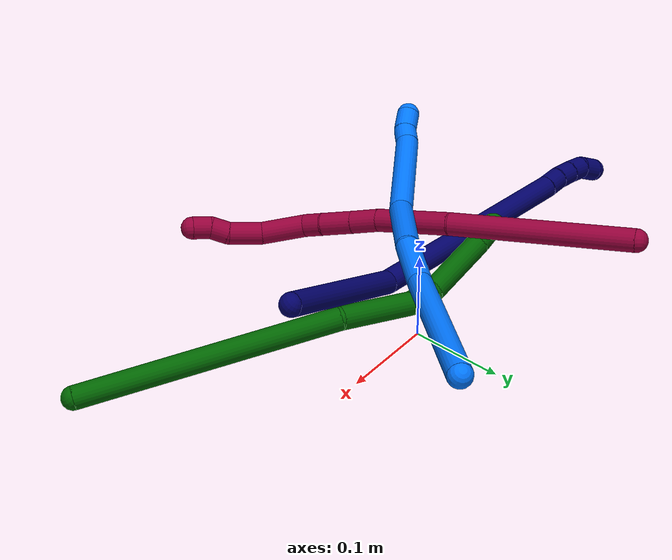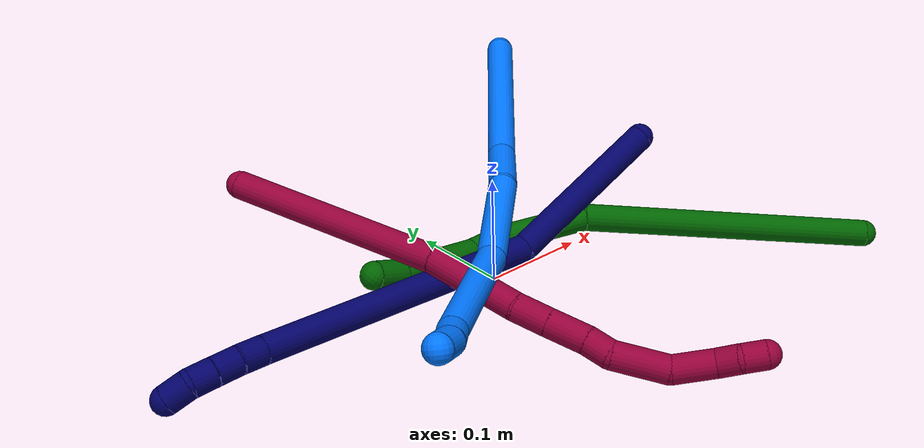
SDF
<sdf version="1.7">
 <world name="default">
  <model name="photoneo_s_sensor">
   <static>1</static>
   <pose>0 0 2 1.57079 1.57079 3.14159</pose>
   <link name="link">
    <inertial><mass>0.1</mass></inertial>
    <sensor name="sensor" type="depth">
     <update_rate>30</update_rate>
     <camera>
      <horizontal_fov>1.22</horizontal_fov>
      <image><width>1920</width><height>1200</height><format>B8G8R8</format></image>
      <clip><near>0.1</near><far>4</far></clip>
      <depth_camera><output>points</output></depth_camera>
     </camera>
     <plugin name="camera_plugin" filename="libgazebo_ros_depth_camera.so">
      <baseline>0.2</baseline>
      <alwaysOn>1</alwaysOn>
      <updateRate>0.0</updateRate>
      <cameraName>camera_ir</cameraName>
      <imageTopicName>/camera/color/image_raw</imageTopicName>
      <cameraInfoTopicName>/camera/color/camera_info</cameraInfoTopicName>
      <depthImageTopicName>/camera/depth/image_raw</depthImageTopicName>
      <depthImageCameraInfoTopicName>/camera/depth/camera_info</depthImageCameraInfoTopicName>
      <pointCloudTopicName>/camera/depth/points</pointCloudTopicName>
      <frameName>fr_optical</frameName>
      <pointCloudCutoff>0.1</pointCloudCutoff>
      <pointCloudCutoffMax>2.0</pointCloudCutoffMax>
      <distortionK1>0</distortionK1>
      <distortionK2>0</distortionK2>
      <distortionK3>0</distortionK3>
      <distortionT1>0</distortionT1>
      <distortionT2>0</distortionT2>
      <CxPrime>0</CxPrime>
      <Cx>0</Cx>
      <Cy>0</Cy>
      <focalLength>0</focalLength>
      <hackBaseline>0</hackBaseline>
     </plugin>
    </sensor>
   </link>
  </model>
  <model name="bin">
   <static>1</static>
   <link name="bottom">
    <collision name="collision-bottom">
     <pose>0 0 -0.01 0 -0 0</pose>
     <geometry><box><size>0.8 0.6 0.02</size></box></geometry>
     <surface>
      <friction><ode><mu>100</mu><mu2>100</mu2></ode></friction>
      <contact><collide_bitmask>65535</collide_bitmask></contact>
     </surface>
    </collision>
   </link>
   <link name="west_wall">
    <collision name="collision-west_wall">
     <pose>-0.41 0 0.1 0 -0 0</pose>
     <geometry><box><size>0.02 0.6 0.2</size></box></geometry>
     <surface>
      <friction><ode><mu>100</mu><mu2>100</mu2></ode></friction>
      <contact><collide_bitmask>65535</collide_bitmask></contact>
     </surface>
    </collision>
   </link>
   <link name="east_wall">
    <collision name="collision-east_wall">
     <pose>0.41 0 0.1 0 -0 0</pose>
     <geometry><box><size>0.02 0.6 0.2</size></box></geometry>
     <surface>
      <friction><ode><mu>100</mu><mu2>100</mu2></ode></friction>
      <contact><collide_bitmask>65535</collide_bitmask></contact>
     </surface>
    </collision>
   </link>
   <link name="south_wall">
    <collision name="collision-south_wall">
     <pose>0 -0.31 0.1 0 -0 0</pose>
     <geometry><box><size>0.8 0.02 0.2</size></box></geometry>
     <surface>
      <friction><ode><mu>100</mu><mu2>100</mu2></ode></friction>
      <contact><collide_bitmask>65535</collide_bitmask></contact>
     </surface>
    </collision>
   </link>
   <link name="north_wall">
    <collision name="collision-north_wall">
     <pose>0 0.31 0.1 0 -0 0</pose>
     <geometry><box><size>0.8 0.02 0.2</size></box></geometry>
     <surface>
      <friction><ode><mu>100</mu><mu2>100</mu2></ode></friction>
      <contact><collide_bitmask>65535</collide_bitmask></contact>
     </surface>
    </collision>
   </link>
  </model>
  <model name="6">
   <static>0</static>
   <link name="6">
    <collision name="collision-cylinder-e_1_1_4">
     <pose>0.01175 -0.00789 -0.0045 2.08916 0.912702 1.40336</pose>
     <geometry><cylinder><radius>0.0125</radius><length>0.029703</length></cylinder></geometry>
     <surface>
      <friction><ode><mu>1.16</mu><mu2>1.16</mu2><slip1>0</slip1><slip2>0</slip2></ode></friction>
      <contact><ode><kp>1e+06</kp><kd>1</kd><max_vel>0</max_vel><min_depth>0.001</min_depth></ode></contact>
     </surface>
    </collision>
    <visual name="visual-cylinder-e_1_1_4">
     <pose>0.01175 -0.00789 -0.0045 2.08916 0.912702 1.40336</pose>
     <geometry><cylinder><radius>0.0125</radius><length>0.029703</length></cylinder></geometry>
     <material><ambient>0 0.392157 0.003922 1</ambient></material>
    </visual>
    <collision name="collision-cylinder-e_2_4_5">
     <pose>0.052448 -0.038461 -0.027341 2.25079 0.781619 1.42401</pose>
     <geometry><cylinder><radius>0.0125</radius><length>0.08219</length></cylinder></geometry>
     <surface>
      <friction><ode><mu>1.16</mu><mu2>1.16</mu2><slip1>0</slip1><slip2>0</slip2></ode></friction>
      <contact><ode><kp>1e+06</kp><kd>1</kd><max_vel>0</max_vel><min_depth>0.001</min_depth></ode></contact>
     </surface>
    </collision>
    <visual name="visual-cylinder-e_2_4_5">
     <pose>0.052448 -0.038461 -0.027341 2.25079 0.781619 1.42401</pose>
     <geometry><cylinder><radius>0.0125</radius><length>0.08219</length></cylinder></geometry>
     <material><ambient>0 0.392157 0.003922 1</ambient></material>
    </visual>
    <collision name="collision-cylinder-e_3_5_6">
     <pose>0.092022 -0.068506 -0.057 2.56468 0.66665 1.7245</pose>
     <geometry><cylinder><radius>0.0125</radius><length>0.034363</length></cylinder></geometry>
     <surface>
      <friction><ode><mu>1.16</mu><mu2>1.16</mu2><slip1>0</slip1><slip2>0</slip2></ode></friction>
      <contact><ode><kp>1e+06</kp><kd>1</kd><max_vel>0</max_vel><min_depth>0.001</min_depth></ode></contact>
     </surface>
    </collision>
    <visual name="visual-cylinder-e_3_5_6">
     <pose>0.092022 -0.068506 -0.057 2.56468 0.66665 1.7245</pose>
     <geometry><cylinder><radius>0.0125</radius><length>0.034363</length></cylinder></geometry>
     <material><ambient>0 0.392157 0.003922 1</ambient></material>
    </visual>
    <collision name="collision-cylinder-e_4_6_7">
     <pose>0.130062 -0.079656 -0.096282 3.00706 0.770964 2.81255</pose>
     <geometry><cylinder><radius>0.0125</radius><length>0.07869</length></cylinder></geometry>
     <surface>
      <friction><ode><mu>1.16</mu><mu2>1.16</mu2><slip1>0</slip1><slip2>0</slip2></ode></friction>
      <contact><ode><kp>1e+06</kp><kd>1</kd><max_vel>0</max_vel><min_depth>0.001</min_depth></ode></contact>
     </surface>
    </collision>
    <visual name="visual-cylinder-e_4_6_7">
     <pose>0.130062 -0.079656 -0.096282 3.00706 0.770964 2.81255</pose>
     <geometry><cylinder><radius>0.0125</radius><length>0.07869</length></cylinder></geometry>
     <material><ambient>0 0.392157 0.003922 1</ambient></material>
    </visual>
    <collision name="collision-cylinder-e_5_7_2">
     <pose>0.27634 -0.077373 -0.193158 -3.05376 1.04371 -2.98905</pose>
     <geometry><cylinder><radius>0.0125</radius><length>0.275054</length></cylinder></geometry>
     <surface>
      <friction><ode><mu>1.16</mu><mu2>1.16</mu2><slip1>0</slip1><slip2>0</slip2></ode></friction>
      <contact><ode><kp>1e+06</kp><kd>1</kd><max_vel>0</max_vel><min_depth>0.001</min_depth></ode></contact>
     </surface>
    </collision>
    <visual name="visual-cylinder-e_5_7_2">
     <pose>0.27634 -0.077373 -0.193158 -3.05376 1.04371 -2.98905</pose>
     <geometry><cylinder><radius>0.0125</radius><length>0.275054</length></cylinder></geometry>
     <material><ambient>0 0.392157 0.003922 1</ambient></material>
    </visual>
    <collision name="collision-sphere-2">
     <pose>0.395202 -0.071305 -0.262069 0 -0 0</pose>
     <geometry><sphere><radius>0.0125</radius></sphere></geometry>
     <surface>
      <friction><ode><mu>1.16</mu><mu2>1.16</mu2><slip1>0</slip1><slip2>0</slip2></ode></friction>
      <contact><ode><kp>1e+06</kp><kd>1</kd><max_vel>0</max_vel><min_depth>0.001</min_depth></ode></contact>
     </surface>
    </collision>
    <visual name="visual-sphere-2">
     <pose>0.395202 -0.071305 -0.262069 0 -0 0</pose>
     <geometry><sphere><radius>0.0125</radius></sphere></geometry>
     <material><ambient>0 0.392157 0.003922 1</ambient></material>
    </visual>
    <collision name="collision-sphere-7">
     <pose>0.157479 -0.083442 -0.124247 0 -0 0</pose>
     <geometry><sphere><radius>0.0125</radius></sphere></geometry>
     <surface>
      <friction><ode><mu>1.16</mu><mu2>1.16</mu2><slip1>0</slip1><slip2>0</slip2></ode></friction>
      <contact><ode><kp>1e+06</kp><kd>1</kd><max_vel>0</max_vel><min_depth>0.001</min_depth></ode></contact>
     </surface>
    </collision>
    <visual name="visual-sphere-7">
     <pose>0.157479 -0.083442 -0.124247 0 -0 0</pose>
     <geometry><sphere><radius>0.0125</radius></sphere></geometry>
     <material><ambient>0 0.392157 0.003922 1</ambient></material>
    </visual>
    <collision name="collision-sphere-6">
     <pose>0.102646 -0.075871 -0.068317 0 -0 0</pose>
     <geometry><sphere><radius>0.0125</radius></sphere></geometry>
     <surface>
      <friction><ode><mu>1.16</mu><mu2>1.16</mu2><slip1>0</slip1><slip2>0</slip2></ode></friction>
      <contact><ode><kp>1e+06</kp><kd>1</kd><max_vel>0</max_vel><min_depth>0.001</min_depth></ode></contact>
     </surface>
    </collision>
    <visual name="visual-sphere-6">
     <pose>0.102646 -0.075871 -0.068317 0 -0 0</pose>
     <geometry><sphere><radius>0.0125</radius></sphere></geometry>
     <material><ambient>0 0.392157 0.003922 1</ambient></material>
    </visual>
    <collision name="collision-sphere-5">
     <pose>0.081397 -0.061141 -0.045682 0 -0 0</pose>
     <geometry><sphere><radius>0.0125</radius></sphere></geometry>
     <surface>
      <friction><ode><mu>1.16</mu><mu2>1.16</mu2><slip1>0</slip1><slip2>0</slip2></ode></friction>
      <contact><ode><kp>1e+06</kp><kd>1</kd><max_vel>0</max_vel><min_depth>0.001</min_depth></ode></contact>
     </surface>
    </collision>
    <visual name="visual-sphere-5">
     <pose>0.081397 -0.061141 -0.045682 0 -0 0</pose>
     <geometry><sphere><radius>0.0125</radius></sphere></geometry>
     <material><ambient>0 0.392157 0.003922 1</ambient></material>
    </visual>
    <collision name="collision-sphere-1">
     <geometry><sphere><radius>0.0125</radius></sphere></geometry>
     <surface>
      <friction><ode><mu>1.16</mu><mu2>1.16</mu2><slip1>0</slip1><slip2>0</slip2></ode></friction>
      <contact><ode><kp>1e+06</kp><kd>1</kd><max_vel>0</max_vel><min_depth>0.001</min_depth></ode></contact>
     </surface>
    </collision>
    <visual name="visual-sphere-1">
     <geometry><sphere><radius>0.0125</radius></sphere></geometry>
     <material><ambient>0 0.392157 0.003922 1</ambient></material>
    </visual>
    <collision name="collision-sphere-4">
     <pose>0.0235 -0.01578 -0.009001 0 -0 0</pose>
     <geometry><sphere><radius>0.0125</radius></sphere></geometry>
     <surface>
      <friction><ode><mu>1.16</mu><mu2>1.16</mu2><slip1>0</slip1><slip2>0</slip2></ode></friction>
      <contact><ode><kp>1e+06</kp><kd>1</kd><max_vel>0</max_vel><min_depth>0.001</min_depth></ode></contact>
     </surface>
    </collision>
    <visual name="visual-sphere-4">
     <pose>0.0235 -0.01578 -0.009001 0 -0 0</pose>
     <geometry><sphere><radius>0.0125</radius></sphere></geometry>
     <material><ambient>0 0.392157 0.003922 1</ambient></material>
    </visual>
    <inertial>
     <pose>0.18813 -0.066599 -0.130089 0 -0 0</pose>
     <mass>0.5</mass>
     <inertia>
      <ixx>-0.000944</ixx>
      <ixy>0</ixy>
      <ixz>0</ixz>
      <iyy>0.001718</iyy>
      <iyz>0</iyz>
      <izz>-0.001641</izz>
     </inertia>
    </inertial>
   </link>
   <pose>-0.13715 -0.005034 0.060524 3.01008 0.669886 -0.629005</pose>
  </model>
  <model name="7">
   <static>0</static>
   <link name="7">
    <collision name="collision-cylinder-e_1_1_4">
     <pose>-0.078591 -0.0114 0.005506 1.12085 -1.41108 -0.981791</pose>
     <geometry><cylinder><radius>0.0125</radius><length>0.159207</length></cylinder></geometry>
     <surface>
      <friction><ode><mu>1.16</mu><mu2>1.16</mu2><slip1>0</slip1><slip2>0</slip2></ode></friction>
      <contact><ode><kp>1e+06</kp><kd>1</kd><max_vel>0</max_vel><min_depth>0.001</min_depth></ode></contact>
     </surface>
    </collision>
    <visual name="visual-cylinder-e_1_1_4">
     <pose>-0.078591 -0.0114 0.005506 1.12085 -1.41108 -0.981791</pose>
     <geometry><cylinder><radius>0.0125</radius><length>0.159207</length></cylinder></geometry>
     <material><ambient>0.003922 0 0.403922 1</ambient></material>
    </visual>
    <collision name="collision-cylinder-e_2_4_5">
     <pose>-0.278902 -0.027008 -0.028124 3.03449 -1.25803 -2.99452</pose>
     <geometry><cylinder><radius>0.0125</radius><length>0.255855</length></cylinder></geometry>
     <surface>
      <friction><ode><mu>1.16</mu><mu2>1.16</mu2><slip1>0</slip1><slip2>0</slip2></ode></friction>
      <contact><ode><kp>1e+06</kp><kd>1</kd><max_vel>0</max_vel><min_depth>0.001</min_depth></ode></contact>
     </surface>
    </collision>
    <visual name="visual-cylinder-e_2_4_5">
     <pose>-0.278902 -0.027008 -0.028124 3.03449 -1.25803 -2.99452</pose>
     <geometry><cylinder><radius>0.0125</radius><length>0.255855</length></cylinder></geometry>
     <material><ambient>0.003922 0 0.403922 1</ambient></material>
    </visual>
    <collision name="collision-cylinder-e_3_5_6">
     <pose>-0.41095 -0.030598 -0.070426 -2.94881 -1.26813 2.88011</pose>
     <geometry><cylinder><radius>0.0125</radius><length>0.021636</length></cylinder></geometry>
     <surface>
      <friction><ode><mu>1.16</mu><mu2>1.16</mu2><slip1>0</slip1><slip2>0</slip2></ode></friction>
      <contact><ode><kp>1e+06</kp><kd>1</kd><max_vel>0</max_vel><min_depth>0.001</min_depth></ode></contact>
     </surface>
    </collision>
    <visual name="visual-cylinder-e_3_5_6">
     <pose>-0.41095 -0.030598 -0.070426 -2.94881 -1.26813 2.88011</pose>
     <geometry><cylinder><radius>0.0125</radius><length>0.021636</length></cylinder></geometry>
     <material><ambient>0.003922 0 0.403922 1</ambient></material>
    </visual>
    <collision name="collision-cylinder-e_4_6_7">
     <pose>-0.431666 -0.03061 -0.07614 2.89904 -1.32324 -2.83109</pose>
     <geometry><cylinder><radius>0.0125</radius><length>0.021433</length></cylinder></geometry>
     <surface>
      <friction><ode><mu>1.16</mu><mu2>1.16</mu2><slip1>0</slip1><slip2>0</slip2></ode></friction>
      <contact><ode><kp>1e+06</kp><kd>1</kd><max_vel>0</max_vel><min_depth>0.001</min_depth></ode></contact>
     </surface>
    </collision>
    <visual name="visual-cylinder-e_4_6_7">
     <pose>-0.431666 -0.03061 -0.07614 2.89904 -1.32324 -2.83109</pose>
     <geometry><cylinder><radius>0.0125</radius><length>0.021433</length></cylinder></geometry>
     <material><ambient>0.003922 0 0.403922 1</ambient></material>
    </visual>
    <collision name="collision-cylinder-e_5_7_8">
     <pose>-0.451925 -0.032467 -0.080971 2.64857 -1.31411 -2.51095</pose>
     <geometry><cylinder><radius>0.0125</radius><length>0.020408</length></cylinder></geometry>
     <surface>
      <friction><ode><mu>1.16</mu><mu2>1.16</mu2><slip1>0</slip1><slip2>0</slip2></ode></friction>
      <contact><ode><kp>1e+06</kp><kd>1</kd><max_vel>0</max_vel><min_depth>0.001</min_depth></ode></contact>
     </surface>
    </collision>
    <visual name="visual-cylinder-e_5_7_8">
     <pose>-0.451925 -0.032467 -0.080971 2.64857 -1.31411 -2.51095</pose>
     <geometry><cylinder><radius>0.0125</radius><length>0.020408</length></cylinder></geometry>
     <material><ambient>0.003922 0 0.403922 1</ambient></material>
    </visual>
    <collision name="collision-cylinder-e_6_8_2">
     <pose>-0.471471 -0.038332 -0.083302 1.58144 -1.12378 -1.1334</pose>
     <geometry><cylinder><radius>0.0125</radius><length>0.021461</length></cylinder></geometry>
     <surface>
      <friction><ode><mu>1.16</mu><mu2>1.16</mu2><slip1>0</slip1><slip2>0</slip2></ode></friction>
      <contact><ode><kp>1e+06</kp><kd>1</kd><max_vel>0</max_vel><min_depth>0.001</min_depth></ode></contact>
     </surface>
    </collision>
    <visual name="visual-cylinder-e_6_8_2">
     <pose>-0.471471 -0.038332 -0.083302 1.58144 -1.12378 -1.1334</pose>
     <geometry><cylinder><radius>0.0125</radius><length>0.021461</length></cylinder></geometry>
     <material><ambient>0.003922 0 0.403922 1</ambient></material>
    </visual>
    <collision name="collision-sphere-2">
     <pose>-0.481147 -0.04297 -0.083352 0 -0 0</pose>
     <geometry><sphere><radius>0.0125</radius></sphere></geometry>
     <surface>
      <friction><ode><mu>1.16</mu><mu2>1.16</mu2><slip1>0</slip1><slip2>0</slip2></ode></friction>
      <contact><ode><kp>1e+06</kp><kd>1</kd><max_vel>0</max_vel><min_depth>0.001</min_depth></ode></contact>
     </surface>
    </collision>
    <visual name="visual-sphere-2">
     <pose>-0.481147 -0.04297 -0.083352 0 -0 0</pose>
     <geometry><sphere><radius>0.0125</radius></sphere></geometry>
     <material><ambient>0.003922 0 0.403922 1</ambient></material>
    </visual>
    <collision name="collision-sphere-4">
     <pose>-0.157181 -0.0228 0.011012 0 -0 0</pose>
     <geometry><sphere><radius>0.0125</radius></sphere></geometry>
     <surface>
      <friction><ode><mu>1.16</mu><mu2>1.16</mu2><slip1>0</slip1><slip2>0</slip2></ode></friction>
      <contact><ode><kp>1e+06</kp><kd>1</kd><max_vel>0</max_vel><min_depth>0.001</min_depth></ode></contact>
     </surface>
    </collision>
    <visual name="visual-sphere-4">
     <pose>-0.157181 -0.0228 0.011012 0 -0 0</pose>
     <geometry><sphere><radius>0.0125</radius></sphere></geometry>
     <material><ambient>0.003922 0 0.403922 1</ambient></material>
    </visual>
    <collision name="collision-sphere-1">
     <geometry><sphere><radius>0.0125</radius></sphere></geometry>
     <surface>
      <friction><ode><mu>1.16</mu><mu2>1.16</mu2><slip1>0</slip1><slip2>0</slip2></ode></friction>
      <contact><ode><kp>1e+06</kp><kd>1</kd><max_vel>0</max_vel><min_depth>0.001</min_depth></ode></contact>
     </surface>
    </collision>
    <visual name="visual-sphere-1">
     <geometry><sphere><radius>0.0125</radius></sphere></geometry>
     <material><ambient>0.003922 0 0.403922 1</ambient></material>
    </visual>
    <collision name="collision-sphere-8">
     <pose>-0.461795 -0.033693 -0.083253 0 -0 0</pose>
     <geometry><sphere><radius>0.0125</radius></sphere></geometry>
     <surface>
      <friction><ode><mu>1.16</mu><mu2>1.16</mu2><slip1>0</slip1><slip2>0</slip2></ode></friction>
      <contact><ode><kp>1e+06</kp><kd>1</kd><max_vel>0</max_vel><min_depth>0.001</min_depth></ode></contact>
     </surface>
    </collision>
    <visual name="visual-sphere-8">
     <pose>-0.461795 -0.033693 -0.083253 0 -0 0</pose>
     <geometry><sphere><radius>0.0125</radius></sphere></geometry>
     <material><ambient>0.003922 0 0.403922 1</ambient></material>
    </visual>
    <collision name="collision-sphere-5">
     <pose>-0.400624 -0.031215 -0.067261 0 -0 0</pose>
     <geometry><sphere><radius>0.0125</radius></sphere></geometry>
     <surface>
      <friction><ode><mu>1.16</mu><mu2>1.16</mu2><slip1>0</slip1><slip2>0</slip2></ode></friction>
      <contact><ode><kp>1e+06</kp><kd>1</kd><max_vel>0</max_vel><min_depth>0.001</min_depth></ode></contact>
     </surface>
    </collision>
    <visual name="visual-sphere-5">
     <pose>-0.400624 -0.031215 -0.067261 0 -0 0</pose>
     <geometry><sphere><radius>0.0125</radius></sphere></geometry>
     <material><ambient>0.003922 0 0.403922 1</ambient></material>
    </visual>
    <collision name="collision-sphere-6">
     <pose>-0.421276 -0.02998 -0.073591 0 -0 0</pose>
     <geometry><sphere><radius>0.0125</radius></sphere></geometry>
     <surface>
      <friction><ode><mu>1.16</mu><mu2>1.16</mu2><slip1>0</slip1><slip2>0</slip2></ode></friction>
      <contact><ode><kp>1e+06</kp><kd>1</kd><max_vel>0</max_vel><min_depth>0.001</min_depth></ode></contact>
     </surface>
    </collision>
    <visual name="visual-sphere-6">
     <pose>-0.421276 -0.02998 -0.073591 0 -0 0</pose>
     <geometry><sphere><radius>0.0125</radius></sphere></geometry>
     <material><ambient>0.003922 0 0.403922 1</ambient></material>
    </visual>
    <collision name="collision-sphere-7">
     <pose>-0.442056 -0.031241 -0.078689 0 -0 0</pose>
     <geometry><sphere><radius>0.0125</radius></sphere></geometry>
     <surface>
      <friction><ode><mu>1.16</mu><mu2>1.16</mu2><slip1>0</slip1><slip2>0</slip2></ode></friction>
      <contact><ode><kp>1e+06</kp><kd>1</kd><max_vel>0</max_vel><min_depth>0.001</min_depth></ode></contact>
     </surface>
    </collision>
    <visual name="visual-sphere-7">
     <pose>-0.442056 -0.031241 -0.078689 0 -0 0</pose>
     <geometry><sphere><radius>0.0125</radius></sphere></geometry>
     <material><ambient>0.003922 0 0.403922 1</ambient></material>
    </visual>
    <inertial>
     <pose>-0.24271 -0.023057 -0.02583 0 -0 0</pose>
     <mass>0.5</mass>
     <inertia>
      <ixx>-0.000546</ixx>
      <ixy>0</ixy>
      <ixz>0</ixz>
      <iyy>0.001633</iyy>
      <iyz>0</iyz>
      <izz>0.001772</izz>
     </inertia>
    </inertial>
   </link>
   <pose>0.146545 -0.04158 0.111064 2.58152 -0.270473 0.084732</pose>
  </model>
  <model name="8">
   <static>0</static>
   <link name="8">
    <collision name="collision-cylinder-e_1_1_4">
     <pose>0.015844 -0.095139 -0.024239 1.82027 0.159996 0.205584</pose>
     <geometry><cylinder><radius>0.0125</radius><length>0.198898</length></cylinder></geometry>
     <surface>
      <friction><ode><mu>1.16</mu><mu2>1.16</mu2><slip1>0</slip1><slip2>0</slip2></ode></friction>
      <contact><ode><kp>1e+06</kp><kd>1</kd><max_vel>0</max_vel><min_depth>0.001</min_depth></ode></contact>
     </surface>
    </collision>
    <visual name="visual-cylinder-e_1_1_4">
     <pose>0.015844 -0.095139 -0.024239 1.82027 0.159996 0.205584</pose>
     <geometry><cylinder><radius>0.0125</radius><length>0.198898</length></cylinder></geometry>
     <material><ambient>0.584314 0 0.227451 1</ambient></material>
    </visual>
    <collision name="collision-cylinder-e_2_4_5">
     <pose>0.044167 -0.229045 -0.059427 1.84604 0.300443 0.394847</pose>
     <geometry><cylinder><radius>0.0125</radius><length>0.084342</length></cylinder></geometry>
     <surface>
      <friction><ode><mu>1.16</mu><mu2>1.16</mu2><slip1>0</slip1><slip2>0</slip2></ode></friction>
      <contact><ode><kp>1e+06</kp><kd>1</kd><max_vel>0</max_vel><min_depth>0.001</min_depth></ode></contact>
     </surface>
    </collision>
    <visual name="visual-cylinder-e_2_4_5">
     <pose>0.044167 -0.229045 -0.059427 1.84604 0.300443 0.394847</pose>
     <geometry><cylinder><radius>0.0125</radius><length>0.084342</length></cylinder></geometry>
     <material><ambient>0.584314 0 0.227451 1</ambient></material>
    </visual>
    <collision name="collision-cylinder-e_3_5_6">
     <pose>0.0603 -0.282483 -0.071994 1.68069 0.242524 0.270429</pose>
     <geometry><cylinder><radius>0.0125</radius><length>0.030414</length></cylinder></geometry>
     <surface>
      <friction><ode><mu>1.16</mu><mu2>1.16</mu2><slip1>0</slip1><slip2>0</slip2></ode></friction>
      <contact><ode><kp>1e+06</kp><kd>1</kd><max_vel>0</max_vel><min_depth>0.001</min_depth></ode></contact>
     </surface>
    </collision>
    <visual name="visual-cylinder-e_3_5_6">
     <pose>0.0603 -0.282483 -0.071994 1.68069 0.242524 0.270429</pose>
     <geometry><cylinder><radius>0.0125</radius><length>0.030414</length></cylinder></geometry>
     <material><ambient>0.584314 0 0.227451 1</ambient></material>
    </visual>
    <collision name="collision-cylinder-e_4_6_7">
     <pose>0.067916 -0.314157 -0.07561 1.68777 0.227589 0.255609</pose>
     <geometry><cylinder><radius>0.0125</radius><length>0.035142</length></cylinder></geometry>
     <surface>
      <friction><ode><mu>1.16</mu><mu2>1.16</mu2><slip1>0</slip1><slip2>0</slip2></ode></friction>
      <contact><ode><kp>1e+06</kp><kd>1</kd><max_vel>0</max_vel><min_depth>0.001</min_depth></ode></contact>
     </surface>
    </collision>
    <visual name="visual-cylinder-e_4_6_7">
     <pose>0.067916 -0.314157 -0.07561 1.68777 0.227589 0.255609</pose>
     <geometry><cylinder><radius>0.0125</radius><length>0.035142</length></cylinder></geometry>
     <material><ambient>0.584314 0 0.227451 1</ambient></material>
    </visual>
    <collision name="collision-cylinder-e_5_7_8">
     <pose>0.075687 -0.341461 -0.079384 1.74144 0.349113 0.412717</pose>
     <geometry><cylinder><radius>0.0125</radius><length>0.022254</length></cylinder></geometry>
     <surface>
      <friction><ode><mu>1.16</mu><mu2>1.16</mu2><slip1>0</slip1><slip2>0</slip2></ode></friction>
      <contact><ode><kp>1e+06</kp><kd>1</kd><max_vel>0</max_vel><min_depth>0.001</min_depth></ode></contact>
     </surface>
    </collision>
    <visual name="visual-cylinder-e_5_7_8">
     <pose>0.075687 -0.341461 -0.079384 1.74144 0.349113 0.412717</pose>
     <geometry><cylinder><radius>0.0125</radius><length>0.022254</length></cylinder></geometry>
     <material><ambient>0.584314 0 0.227451 1</ambient></material>
    </visual>
    <collision name="collision-cylinder-e_6_8_9">
     <pose>0.080989 -0.376563 -0.079283 1.49527 0.060107 0.055733</pose>
     <geometry><cylinder><radius>0.0125</radius><length>0.049828</length></cylinder></geometry>
     <surface>
      <friction><ode><mu>1.16</mu><mu2>1.16</mu2><slip1>0</slip1><slip2>0</slip2></ode></friction>
      <contact><ode><kp>1e+06</kp><kd>1</kd><max_vel>0</max_vel><min_depth>0.001</min_depth></ode></contact>
     </surface>
    </collision>
    <visual name="visual-cylinder-e_6_8_9">
     <pose>0.080989 -0.376563 -0.079283 1.49527 0.060107 0.055733</pose>
     <geometry><cylinder><radius>0.0125</radius><length>0.049828</length></cylinder></geometry>
     <material><ambient>0.584314 0 0.227451 1</ambient></material>
    </visual>
    <collision name="collision-cylinder-e_7_9_10">
     <pose>0.076257 -0.419347 -0.076332 1.5111 -0.332873 -0.313898</pose>
     <geometry><cylinder><radius>0.0125</radius><length>0.038128</length></cylinder></geometry>
     <surface>
      <friction><ode><mu>1.16</mu><mu2>1.16</mu2><slip1>0</slip1><slip2>0</slip2></ode></friction>
      <contact><ode><kp>1e+06</kp><kd>1</kd><max_vel>0</max_vel><min_depth>0.001</min_depth></ode></contact>
     </surface>
    </collision>
    <visual name="visual-cylinder-e_7_9_10">
     <pose>0.076257 -0.419347 -0.076332 1.5111 -0.332873 -0.313898</pose>
     <geometry><cylinder><radius>0.0125</radius><length>0.038128</length></cylinder></geometry>
     <material><ambient>0.584314 0 0.227451 1</ambient></material>
    </visual>
    <collision name="collision-cylinder-e_8_10_11">
     <pose>0.066283 -0.446425 -0.077875 1.8512 -0.376872 -0.496293</pose>
     <geometry><cylinder><radius>0.0125</radius><length>0.020353</length></cylinder></geometry>
     <surface>
      <friction><ode><mu>1.16</mu><mu2>1.16</mu2><slip1>0</slip1><slip2>0</slip2></ode></friction>
      <contact><ode><kp>1e+06</kp><kd>1</kd><max_vel>0</max_vel><min_depth>0.001</min_depth></ode></contact>
     </surface>
    </collision>
    <visual name="visual-cylinder-e_8_10_11">
     <pose>0.066283 -0.446425 -0.077875 1.8512 -0.376872 -0.496293</pose>
     <geometry><cylinder><radius>0.0125</radius><length>0.020353</length></cylinder></geometry>
     <material><ambient>0.584314 0 0.227451 1</ambient></material>
    </visual>
    <collision name="collision-cylinder-e_9_11_2">
     <pose>0.059052 -0.465185 -0.079542 1.47266 -0.344462 -0.312764</pose>
     <geometry><cylinder><radius>0.0125</radius><length>0.020643</length></cylinder></geometry>
     <surface>
      <friction><ode><mu>1.16</mu><mu2>1.16</mu2><slip1>0</slip1><slip2>0</slip2></ode></friction>
      <contact><ode><kp>1e+06</kp><kd>1</kd><max_vel>0</max_vel><min_depth>0.001</min_depth></ode></contact>
     </surface>
    </collision>
    <visual name="visual-cylinder-e_9_11_2">
     <pose>0.059052 -0.465185 -0.079542 1.47266 -0.344462 -0.312764</pose>
     <geometry><cylinder><radius>0.0125</radius><length>0.020643</length></cylinder></geometry>
     <material><ambient>0.584314 0 0.227451 1</ambient></material>
    </visual>
    <collision name="collision-sphere-2">
     <pose>0.055567 -0.474854 -0.07859 0 -0 0</pose>
     <geometry><sphere><radius>0.0125</radius></sphere></geometry>
     <surface>
      <friction><ode><mu>1.16</mu><mu2>1.16</mu2><slip1>0</slip1><slip2>0</slip2></ode></friction>
      <contact><ode><kp>1e+06</kp><kd>1</kd><max_vel>0</max_vel><min_depth>0.001</min_depth></ode></contact>
     </surface>
    </collision>
    <visual name="visual-sphere-2">
     <pose>0.055567 -0.474854 -0.07859 0 -0 0</pose>
     <geometry><sphere><radius>0.0125</radius></sphere></geometry>
     <material><ambient>0.584314 0 0.227451 1</ambient></material>
    </visual>
    <collision name="collision-sphere-11">
     <pose>0.062538 -0.455517 -0.080494 0 -0 0</pose>
     <geometry><sphere><radius>0.0125</radius></sphere></geometry>
     <surface>
      <friction><ode><mu>1.16</mu><mu2>1.16</mu2><slip1>0</slip1><slip2>0</slip2></ode></friction>
      <contact><ode><kp>1e+06</kp><kd>1</kd><max_vel>0</max_vel><min_depth>0.001</min_depth></ode></contact>
     </surface>
    </collision>
    <visual name="visual-sphere-11">
     <pose>0.062538 -0.455517 -0.080494 0 -0 0</pose>
     <geometry><sphere><radius>0.0125</radius></sphere></geometry>
     <material><ambient>0.584314 0 0.227451 1</ambient></material>
    </visual>
    <collision name="collision-sphere-10">
     <pose>0.070028 -0.437332 -0.075257 0 -0 0</pose>
     <geometry><sphere><radius>0.0125</radius></sphere></geometry>
     <surface>
      <friction><ode><mu>1.16</mu><mu2>1.16</mu2><slip1>0</slip1><slip2>0</slip2></ode></friction>
      <contact><ode><kp>1e+06</kp><kd>1</kd><max_vel>0</max_vel><min_depth>0.001</min_depth></ode></contact>
     </surface>
    </collision>
    <visual name="visual-sphere-10">
     <pose>0.070028 -0.437332 -0.075257 0 -0 0</pose>
     <geometry><sphere><radius>0.0125</radius></sphere></geometry>
     <material><ambient>0.584314 0 0.227451 1</ambient></material>
    </visual>
    <collision name="collision-sphere-9">
     <pose>0.082486 -0.401362 -0.077406 0 -0 0</pose>
     <geometry><sphere><radius>0.0125</radius></sphere></geometry>
     <surface>
      <friction><ode><mu>1.16</mu><mu2>1.16</mu2><slip1>0</slip1><slip2>0</slip2></ode></friction>
      <contact><ode><kp>1e+06</kp><kd>1</kd><max_vel>0</max_vel><min_depth>0.001</min_depth></ode></contact>
     </surface>
    </collision>
    <visual name="visual-sphere-9">
     <pose>0.082486 -0.401362 -0.077406 0 -0 0</pose>
     <geometry><sphere><radius>0.0125</radius></sphere></geometry>
     <material><ambient>0.584314 0 0.227451 1</ambient></material>
    </visual>
    <collision name="collision-sphere-4">
     <pose>0.031687 -0.190279 -0.048479 0 -0 0</pose>
     <geometry><sphere><radius>0.0125</radius></sphere></geometry>
     <surface>
      <friction><ode><mu>1.16</mu><mu2>1.16</mu2><slip1>0</slip1><slip2>0</slip2></ode></friction>
      <contact><ode><kp>1e+06</kp><kd>1</kd><max_vel>0</max_vel><min_depth>0.001</min_depth></ode></contact>
     </surface>
    </collision>
    <visual name="visual-sphere-4">
     <pose>0.031687 -0.190279 -0.048479 0 -0 0</pose>
     <geometry><sphere><radius>0.0125</radius></sphere></geometry>
     <material><ambient>0.584314 0 0.227451 1</ambient></material>
    </visual>
    <collision name="collision-sphere-1">
     <geometry><sphere><radius>0.0125</radius></sphere></geometry>
     <surface>
      <friction><ode><mu>1.16</mu><mu2>1.16</mu2><slip1>0</slip1><slip2>0</slip2></ode></friction>
      <contact><ode><kp>1e+06</kp><kd>1</kd><max_vel>0</max_vel><min_depth>0.001</min_depth></ode></contact>
     </surface>
    </collision>
    <visual name="visual-sphere-1">
     <geometry><sphere><radius>0.0125</radius></sphere></geometry>
     <material><ambient>0.584314 0 0.227451 1</ambient></material>
    </visual>
    <collision name="collision-sphere-8">
     <pose>0.079493 -0.351765 -0.081159 0 -0 0</pose>
     <geometry><sphere><radius>0.0125</radius></sphere></geometry>
     <surface>
      <friction><ode><mu>1.16</mu><mu2>1.16</mu2><slip1>0</slip1><slip2>0</slip2></ode></friction>
      <contact><ode><kp>1e+06</kp><kd>1</kd><max_vel>0</max_vel><min_depth>0.001</min_depth></ode></contact>
     </surface>
    </collision>
    <visual name="visual-sphere-8">
     <pose>0.079493 -0.351765 -0.081159 0 -0 0</pose>
     <geometry><sphere><radius>0.0125</radius></sphere></geometry>
     <material><ambient>0.584314 0 0.227451 1</ambient></material>
    </visual>
    <collision name="collision-sphere-5">
     <pose>0.056648 -0.26781 -0.070375 0 -0 0</pose>
     <geometry><sphere><radius>0.0125</radius></sphere></geometry>
     <surface>
      <friction><ode><mu>1.16</mu><mu2>1.16</mu2><slip1>0</slip1><slip2>0</slip2></ode></friction>
      <contact><ode><kp>1e+06</kp><kd>1</kd><max_vel>0</max_vel><min_depth>0.001</min_depth></ode></contact>
     </surface>
    </collision>
    <visual name="visual-sphere-5">
     <pose>0.056648 -0.26781 -0.070375 0 -0 0</pose>
     <geometry><sphere><radius>0.0125</radius></sphere></geometry>
     <material><ambient>0.584314 0 0.227451 1</ambient></material>
    </visual>
    <collision name="collision-sphere-6">
     <pose>0.063952 -0.297156 -0.073613 0 -0 0</pose>
     <geometry><sphere><radius>0.0125</radius></sphere></geometry>
     <surface>
      <friction><ode><mu>1.16</mu><mu2>1.16</mu2><slip1>0</slip1><slip2>0</slip2></ode></friction>
      <contact><ode><kp>1e+06</kp><kd>1</kd><max_vel>0</max_vel><min_depth>0.001</min_depth></ode></contact>
     </surface>
    </collision>
    <visual name="visual-sphere-6">
     <pose>0.063952 -0.297156 -0.073613 0 -0 0</pose>
     <geometry><sphere><radius>0.0125</radius></sphere></geometry>
     <material><ambient>0.584314 0 0.227451 1</ambient></material>
    </visual>
    <collision name="collision-sphere-7">
     <pose>0.071881 -0.331157 -0.077608 0 -0 0</pose>
     <geometry><sphere><radius>0.0125</radius></sphere></geometry>
     <surface>
      <friction><ode><mu>1.16</mu><mu2>1.16</mu2><slip1>0</slip1><slip2>0</slip2></ode></friction>
      <contact><ode><kp>1e+06</kp><kd>1</kd><max_vel>0</max_vel><min_depth>0.001</min_depth></ode></contact>
     </surface>
    </collision>
    <visual name="visual-sphere-7">
     <pose>0.071881 -0.331157 -0.077608 0 -0 0</pose>
     <geometry><sphere><radius>0.0125</radius></sphere></geometry>
     <material><ambient>0.584314 0 0.227451 1</ambient></material>
    </visual>
    <inertial>
     <pose>0.044585 -0.237824 -0.053069 0 -0 0</pose>
     <mass>0.5</mass>
     <inertia>
      <ixx>0.000876</ixx>
      <ixy>0</ixy>
      <ixz>0</ixz>
      <iyy>-2.9e-05</iyy>
      <iyz>0</iyz>
      <izz>0.000586</izz>
     </inertia>
    </inertial>
   </link>
   <pose>-0.16405 0.151523 0.098325 2.89617 1.02918 -2.70191</pose>
  </model>
  <model name="14">
   <static>0</static>
   <link name="14">
    <collision name="collision-cylinder-e_1_1_4">
     <pose>-0.048082 -0.050202 -0.056517 2.4153 -0.566511 -1.30733</pose>
     <geometry><cylinder><radius>0.0125</radius><length>0.179179</length></cylinder></geometry>
     <surface>
      <friction><ode><mu>1.16</mu><mu2>1.16</mu2><slip1>0</slip1><slip2>0</slip2></ode></friction>
      <contact><ode><kp>1e+06</kp><kd>1</kd><max_vel>0</max_vel><min_depth>0.001</min_depth></ode></contact>
     </surface>
    </collision>
    <visual name="visual-cylinder-e_1_1_4">
     <pose>-0.048082 -0.050202 -0.056517 2.4153 -0.566511 -1.30733</pose>
     <geometry><cylinder><radius>0.0125</radius><length>0.179179</length></cylinder></geometry>
     <material><ambient>0 0.462745 1 1</ambient></material>
    </visual>
    <collision name="collision-cylinder-e_2_4_5">
     <pose>-0.113762 -0.120398 -0.127283 2.18998 -0.621893 -1.11529</pose>
     <geometry><cylinder><radius>0.0125</radius><length>0.060414</length></cylinder></geometry>
     <surface>
      <friction><ode><mu>1.16</mu><mu2>1.16</mu2><slip1>0</slip1><slip2>0</slip2></ode></friction>
      <contact><ode><kp>1e+06</kp><kd>1</kd><max_vel>0</max_vel><min_depth>0.001</min_depth></ode></contact>
     </surface>
    </collision>
    <visual name="visual-cylinder-e_2_4_5">
     <pose>-0.113762 -0.120398 -0.127283 2.18998 -0.621893 -1.11529</pose>
     <geometry><cylinder><radius>0.0125</radius><length>0.060414</length></cylinder></geometry>
     <material><ambient>0 0.462745 1 1</ambient></material>
    </visual>
    <collision name="collision-cylinder-e_3_5_6">
     <pose>-0.159974 -0.162619 -0.171439 2.50244 -0.654862 -1.59686</pose>
     <geometry><cylinder><radius>0.0125</radius><length>0.093962</length></cylinder></geometry>
     <surface>
      <friction><ode><mu>1.16</mu><mu2>1.16</mu2><slip1>0</slip1><slip2>0</slip2></ode></friction>
      <contact><ode><kp>1e+06</kp><kd>1</kd><max_vel>0</max_vel><min_depth>0.001</min_depth></ode></contact>
     </surface>
    </collision>
    <visual name="visual-cylinder-e_3_5_6">
     <pose>-0.159974 -0.162619 -0.171439 2.50244 -0.654862 -1.59686</pose>
     <geometry><cylinder><radius>0.0125</radius><length>0.093962</length></cylinder></geometry>
     <material><ambient>0 0.462745 1 1</ambient></material>
    </visual>
    <collision name="collision-cylinder-e_4_6_7">
     <pose>-0.235482 -0.215826 -0.225136 2.22568 -0.87628 -1.52005</pose>
     <geometry><cylinder><radius>0.0125</radius><length>0.122063</length></cylinder></geometry>
     <surface>
      <friction><ode><mu>1.16</mu><mu2>1.16</mu2><slip1>0</slip1><slip2>0</slip2></ode></friction>
      <contact><ode><kp>1e+06</kp><kd>1</kd><max_vel>0</max_vel><min_depth>0.001</min_depth></ode></contact>
     </surface>
    </collision>
    <visual name="visual-cylinder-e_4_6_7">
     <pose>-0.235482 -0.215826 -0.225136 2.22568 -0.87628 -1.52005</pose>
     <geometry><cylinder><radius>0.0125</radius><length>0.122063</length></cylinder></geometry>
     <material><ambient>0 0.462745 1 1</ambient></material>
    </visual>
    <collision name="collision-cylinder-e_5_7_8">
     <pose>-0.289349 -0.253843 -0.251816 1.96047 -0.741974 -1.05158</pose>
     <geometry><cylinder><radius>0.0125</radius><length>0.020637</length></cylinder></geometry>
     <surface>
      <friction><ode><mu>1.16</mu><mu2>1.16</mu2><slip1>0</slip1><slip2>0</slip2></ode></friction>
      <contact><ode><kp>1e+06</kp><kd>1</kd><max_vel>0</max_vel><min_depth>0.001</min_depth></ode></contact>
     </surface>
    </collision>
    <visual name="visual-cylinder-e_5_7_8">
     <pose>-0.289349 -0.253843 -0.251816 1.96047 -0.741974 -1.05158</pose>
     <geometry><cylinder><radius>0.0125</radius><length>0.020637</length></cylinder></geometry>
     <material><ambient>0 0.462745 1 1</ambient></material>
    </visual>
    <collision name="collision-cylinder-e_6_8_2">
     <pose>-0.306322 -0.267174 -0.255851 1.75076 -1.00161 -1.16104</pose>
     <geometry><cylinder><radius>0.0125</radius><length>0.023744</length></cylinder></geometry>
     <surface>
      <friction><ode><mu>1.16</mu><mu2>1.16</mu2><slip1>0</slip1><slip2>0</slip2></ode></friction>
      <contact><ode><kp>1e+06</kp><kd>1</kd><max_vel>0</max_vel><min_depth>0.001</min_depth></ode></contact>
     </surface>
    </collision>
    <visual name="visual-cylinder-e_6_8_2">
     <pose>-0.306322 -0.267174 -0.255851 1.75076 -1.00161 -1.16104</pose>
     <geometry><cylinder><radius>0.0125</radius><length>0.023744</length></cylinder></geometry>
     <material><ambient>0 0.462745 1 1</ambient></material>
    </visual>
    <collision name="collision-sphere-2">
     <pose>-0.316322 -0.273469 -0.256996 0 -0 0</pose>
     <geometry><sphere><radius>0.0125</radius></sphere></geometry>
     <surface>
      <friction><ode><mu>1.16</mu><mu2>1.16</mu2><slip1>0</slip1><slip2>0</slip2></ode></friction>
      <contact><ode><kp>1e+06</kp><kd>1</kd><max_vel>0</max_vel><min_depth>0.001</min_depth></ode></contact>
     </surface>
    </collision>
    <visual name="visual-sphere-2">
     <pose>-0.316322 -0.273469 -0.256996 0 -0 0</pose>
     <geometry><sphere><radius>0.0125</radius></sphere></geometry>
     <material><ambient>0 0.462745 1 1</ambient></material>
    </visual>
    <collision name="collision-sphere-4">
     <pose>-0.096164 -0.100404 -0.113034 0 -0 0</pose>
     <geometry><sphere><radius>0.0125</radius></sphere></geometry>
     <surface>
      <friction><ode><mu>1.16</mu><mu2>1.16</mu2><slip1>0</slip1><slip2>0</slip2></ode></friction>
      <contact><ode><kp>1e+06</kp><kd>1</kd><max_vel>0</max_vel><min_depth>0.001</min_depth></ode></contact>
     </surface>
    </collision>
    <visual name="visual-sphere-4">
     <pose>-0.096164 -0.100404 -0.113034 0 -0 0</pose>
     <geometry><sphere><radius>0.0125</radius></sphere></geometry>
     <material><ambient>0 0.462745 1 1</ambient></material>
    </visual>
    <collision name="collision-sphere-1">
     <geometry><sphere><radius>0.0125</radius></sphere></geometry>
     <surface>
      <friction><ode><mu>1.16</mu><mu2>1.16</mu2><slip1>0</slip1><slip2>0</slip2></ode></friction>
      <contact><ode><kp>1e+06</kp><kd>1</kd><max_vel>0</max_vel><min_depth>0.001</min_depth></ode></contact>
     </surface>
    </collision>
    <visual name="visual-sphere-1">
     <geometry><sphere><radius>0.0125</radius></sphere></geometry>
     <material><ambient>0 0.462745 1 1</ambient></material>
    </visual>
    <collision name="collision-sphere-8">
     <pose>-0.296322 -0.260879 -0.254706 0 -0 0</pose>
     <geometry><sphere><radius>0.0125</radius></sphere></geometry>
     <surface>
      <friction><ode><mu>1.16</mu><mu2>1.16</mu2><slip1>0</slip1><slip2>0</slip2></ode></friction>
      <contact><ode><kp>1e+06</kp><kd>1</kd><max_vel>0</max_vel><min_depth>0.001</min_depth></ode></contact>
     </surface>
    </collision>
    <visual name="visual-sphere-8">
     <pose>-0.296322 -0.260879 -0.254706 0 -0 0</pose>
     <geometry><sphere><radius>0.0125</radius></sphere></geometry>
     <material><ambient>0 0.462745 1 1</ambient></material>
    </visual>
    <collision name="collision-sphere-5">
     <pose>-0.13136 -0.140392 -0.141532 0 -0 0</pose>
     <geometry><sphere><radius>0.0125</radius></sphere></geometry>
     <surface>
      <friction><ode><mu>1.16</mu><mu2>1.16</mu2><slip1>0</slip1><slip2>0</slip2></ode></friction>
      <contact><ode><kp>1e+06</kp><kd>1</kd><max_vel>0</max_vel><min_depth>0.001</min_depth></ode></contact>
     </surface>
    </collision>
    <visual name="visual-sphere-5">
     <pose>-0.13136 -0.140392 -0.141532 0 -0 0</pose>
     <geometry><sphere><radius>0.0125</radius></sphere></geometry>
     <material><ambient>0 0.462745 1 1</ambient></material>
    </visual>
    <collision name="collision-sphere-6">
     <pose>-0.188587 -0.184846 -0.201346 0 -0 0</pose>
     <geometry><sphere><radius>0.0125</radius></sphere></geometry>
     <surface>
      <friction><ode><mu>1.16</mu><mu2>1.16</mu2><slip1>0</slip1><slip2>0</slip2></ode></friction>
      <contact><ode><kp>1e+06</kp><kd>1</kd><max_vel>0</max_vel><min_depth>0.001</min_depth></ode></contact>
     </surface>
    </collision>
    <visual name="visual-sphere-6">
     <pose>-0.188587 -0.184846 -0.201346 0 -0 0</pose>
     <geometry><sphere><radius>0.0125</radius></sphere></geometry>
     <material><ambient>0 0.462745 1 1</ambient></material>
    </visual>
    <collision name="collision-sphere-7">
     <pose>-0.282376 -0.246807 -0.248927 0 -0 0</pose>
     <geometry><sphere><radius>0.0125</radius></sphere></geometry>
     <surface>
      <friction><ode><mu>1.16</mu><mu2>1.16</mu2><slip1>0</slip1><slip2>0</slip2></ode></friction>
      <contact><ode><kp>1e+06</kp><kd>1</kd><max_vel>0</max_vel><min_depth>0.001</min_depth></ode></contact>
     </surface>
    </collision>
    <visual name="visual-sphere-7">
     <pose>-0.282376 -0.246807 -0.248927 0 -0 0</pose>
     <geometry><sphere><radius>0.0125</radius></sphere></geometry>
     <material><ambient>0 0.462745 1 1</ambient></material>
    </visual>
    <inertial>
     <pose>-0.145016 -0.138952 -0.145355 0 -0 0</pose>
     <mass>0.5</mass>
     <inertia>
      <ixx>-0.000477</ixx>
      <ixy>0</ixy>
      <ixz>0</ixz>
      <iyy>-0.000396</iyy>
      <iyz>0</iyz>
      <izz>0.000822</izz>
     </inertia>
    </inertial>
   </link>
   <pose>0.151978 0.159649 0.140338 -0.4442 0.223838 -0.066988</pose>
  </model>
 </world>
</sdf>
